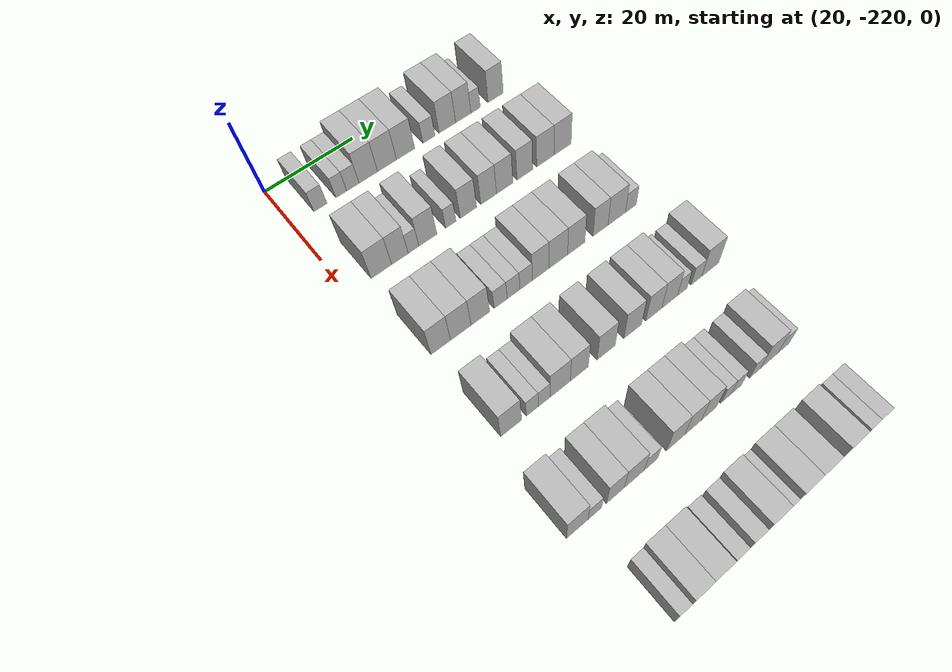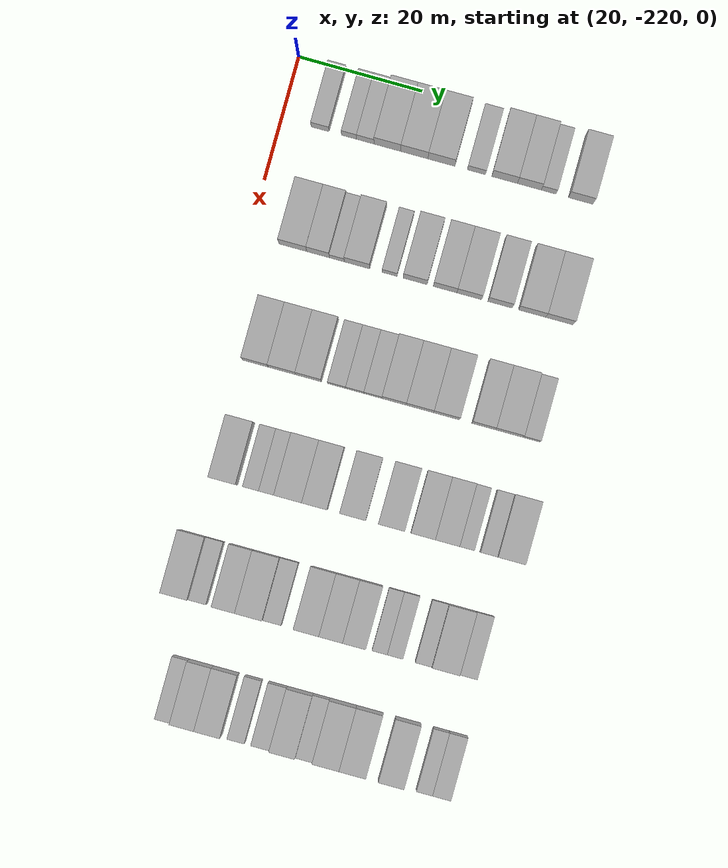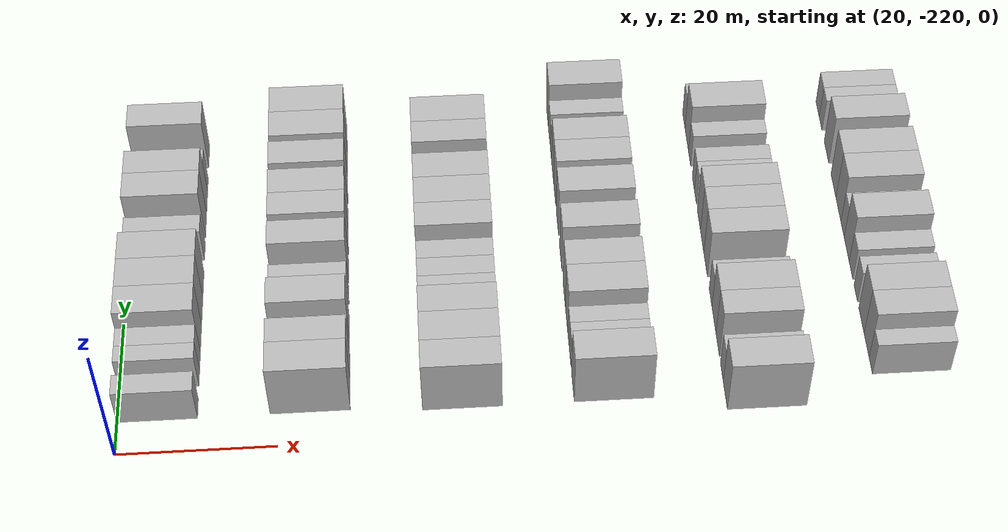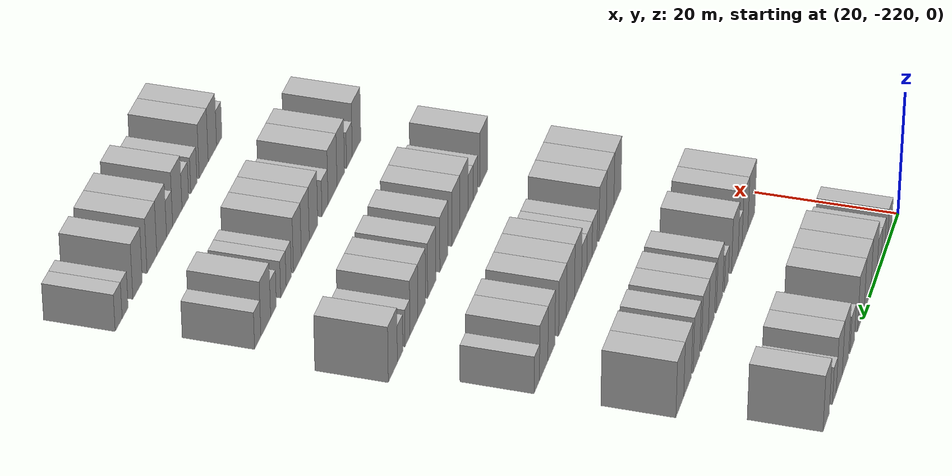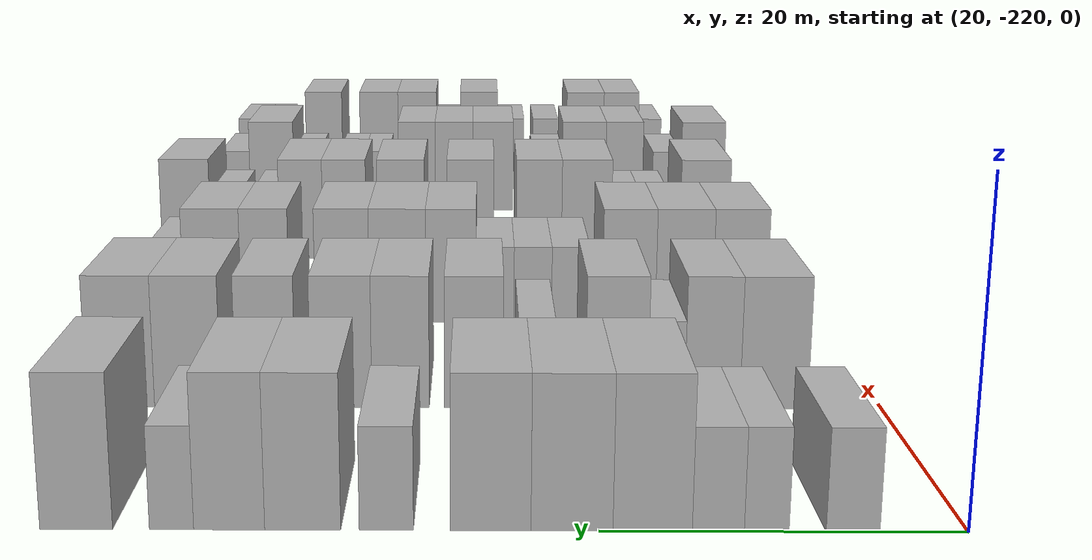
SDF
<sdf version="1.6">
 <world name="default">
  <model name="building_38">
   <static>1</static>
   <pose>25.0000 -213.7599 0 0.000000 0.000000 0.000000</pose>
   <link name="link">
    <pose>0 0 3.00 0 0 0</pose>
    <collision name="collision"><geometry><box><size>10.0000 2.9134 6.0000</size></box></geometry></collision>
    <visual name="visual">
     <cast_shadows>0</cast_shadows>
     <geometry><box><size>10.0000 2.9134 6.0000</size></box></geometry>
     <material>
      <script>
       <uri>model://HANNAS_wall/materials/scripts</uri>
       <uri>model://HANNAS_wall/materials/textures</uri>
       <name>vrc/HANNAS_wall</name>
      </script>
     </material>
    </visual>
   </link>
  </model>
  <model name="building_39">
   <static>1</static>
   <pose>25.0000 -209.0896 0 0.000000 0.000000 0.000000</pose>
   <link name="link">
    <pose>0 0 3.00 0 0 0</pose>
    <collision name="collision"><geometry><box><size>10.0000 2.4271 6.0000</size></box></geometry></collision>
    <visual name="visual">
     <cast_shadows>0</cast_shadows>
     <geometry><box><size>10.0000 2.4271 6.0000</size></box></geometry>
     <material>
      <script>
       <uri>model://HANNAS_wall/materials/scripts</uri>
       <uri>model://HANNAS_wall/materials/textures</uri>
       <name>vrc/HANNAS_wall</name>
      </script>
     </material>
    </visual>
   </link>
  </model>
  <model name="building_40">
   <static>1</static>
   <pose>25.0000 -206.4673 0 0.000000 0.000000 0.000000</pose>
   <link name="link">
    <pose>0 0 3.00 0 0 0</pose>
    <collision name="collision"><geometry><box><size>10.0000 2.8175 6.0000</size></box></geometry></collision>
    <visual name="visual">
     <cast_shadows>0</cast_shadows>
     <geometry><box><size>10.0000 2.8175 6.0000</size></box></geometry>
     <material>
      <script>
       <uri>model://HANNAS_wall/materials/scripts</uri>
       <uri>model://HANNAS_wall/materials/textures</uri>
       <name>vrc/HANNAS_wall</name>
      </script>
     </material>
    </visual>
   </link>
  </model>
  <model name="building_41">
   <static>1</static>
   <pose>25.0000 -202.9107 0 0.000000 0.000000 0.000000</pose>
   <link name="link">
    <pose>0 0 4.50 0 0 0</pose>
    <collision name="collision"><geometry><box><size>10.0000 4.2958 9.0000</size></box></geometry></collision>
    <visual name="visual">
     <cast_shadows>0</cast_shadows>
     <geometry><box><size>10.0000 4.2958 9.0000</size></box></geometry>
     <material>
      <script>
       <uri>model://HANNAS_wall/materials/scripts</uri>
       <uri>model://HANNAS_wall/materials/textures</uri>
       <name>vrc/HANNAS_wall</name>
      </script>
     </material>
    </visual>
   </link>
  </model>
  <model name="building_42">
   <static>1</static>
   <pose>25.0000 -198.5408 0 0.000000 0.000000 0.000000</pose>
   <link name="link">
    <pose>0 0 4.50 0 0 0</pose>
    <collision name="collision"><geometry><box><size>10.0000 4.4440 9.0000</size></box></geometry></collision>
    <visual name="visual">
     <cast_shadows>0</cast_shadows>
     <geometry><box><size>10.0000 4.4440 9.0000</size></box></geometry>
     <material>
      <script>
       <uri>model://HANNAS_wall/materials/scripts</uri>
       <uri>model://HANNAS_wall/materials/textures</uri>
       <name>vrc/HANNAS_wall</name>
      </script>
     </material>
    </visual>
   </link>
  </model>
  <model name="building_43">
   <static>1</static>
   <pose>25.0000 -194.1332 0 0.000000 0.000000 0.000000</pose>
   <link name="link">
    <pose>0 0 4.50 0 0 0</pose>
    <collision name="collision"><geometry><box><size>10.0000 4.3711 9.0000</size></box></geometry></collision>
    <visual name="visual">
     <cast_shadows>0</cast_shadows>
     <geometry><box><size>10.0000 4.3711 9.0000</size></box></geometry>
     <material>
      <script>
       <uri>model://HANNAS_wall/materials/scripts</uri>
       <uri>model://HANNAS_wall/materials/textures</uri>
       <name>vrc/HANNAS_wall</name>
      </script>
     </material>
    </visual>
   </link>
  </model>
  <model name="building_44">
   <static>1</static>
   <pose>25.0000 -188.4746 0 0.000000 0.000000 0.000000</pose>
   <link name="link">
    <pose>0 0 3.00 0 0 0</pose>
    <collision name="collision"><geometry><box><size>10.0000 2.9461 6.0000</size></box></geometry></collision>
    <visual name="visual">
     <cast_shadows>0</cast_shadows>
     <geometry><box><size>10.0000 2.9461 6.0000</size></box></geometry>
     <material>
      <script>
       <uri>model://HANNAS_wall/materials/scripts</uri>
       <uri>model://HANNAS_wall/materials/textures</uri>
       <name>vrc/HANNAS_wall</name>
      </script>
     </material>
    </visual>
   </link>
  </model>
  <model name="building_45">
   <static>1</static>
   <pose>25.0000 -183.9354 0 0.000000 0.000000 0.000000</pose>
   <link name="link">
    <pose>0 0 4.50 0 0 0</pose>
    <collision name="collision"><geometry><box><size>10.0000 4.1322 9.0000</size></box></geometry></collision>
    <visual name="visual">
     <cast_shadows>0</cast_shadows>
     <geometry><box><size>10.0000 4.1322 9.0000</size></box></geometry>
     <material>
      <script>
       <uri>model://HANNAS_wall/materials/scripts</uri>
       <uri>model://HANNAS_wall/materials/textures</uri>
       <name>vrc/HANNAS_wall</name>
      </script>
     </material>
    </visual>
   </link>
  </model>
  <model name="building_46">
   <static>1</static>
   <pose>25.0000 -179.9384 0 0.000000 0.000000 0.000000</pose>
   <link name="link">
    <pose>0 0 4.50 0 0 0</pose>
    <collision name="collision"><geometry><box><size>10.0000 3.8619 9.0000</size></box></geometry></collision>
    <visual name="visual">
     <cast_shadows>0</cast_shadows>
     <geometry><box><size>10.0000 3.8619 9.0000</size></box></geometry>
     <material>
      <script>
       <uri>model://HANNAS_wall/materials/scripts</uri>
       <uri>model://HANNAS_wall/materials/textures</uri>
       <name>vrc/HANNAS_wall</name>
      </script>
     </material>
    </visual>
   </link>
  </model>
  <model name="building_47">
   <static>1</static>
   <pose>25.0000 -176.8023 0 0.000000 0.000000 0.000000</pose>
   <link name="link">
    <pose>0 0 3.00 0 0 0</pose>
    <collision name="collision"><geometry><box><size>10.0000 2.4102 6.0000</size></box></geometry></collision>
    <visual name="visual">
     <cast_shadows>0</cast_shadows>
     <geometry><box><size>10.0000 2.4102 6.0000</size></box></geometry>
     <material>
      <script>
       <uri>model://HANNAS_wall/materials/scripts</uri>
       <uri>model://HANNAS_wall/materials/textures</uri>
       <name>vrc/HANNAS_wall</name>
      </script>
     </material>
    </visual>
   </link>
  </model>
  <model name="building_48">
   <static>1</static>
   <pose>25.0000 -171.6139 0 0.000000 0.000000 0.000000</pose>
   <link name="link">
    <pose>0 0 4.50 0 0 0</pose>
    <collision name="collision"><geometry><box><size>10.0000 3.9666 9.0000</size></box></geometry></collision>
    <visual name="visual">
     <cast_shadows>0</cast_shadows>
     <geometry><box><size>10.0000 3.9666 9.0000</size></box></geometry>
     <material>
      <script>
       <uri>model://HANNAS_wall/materials/scripts</uri>
       <uri>model://HANNAS_wall/materials/textures</uri>
       <name>vrc/HANNAS_wall</name>
      </script>
     </material>
    </visual>
   </link>
  </model>
  <model name="building_213">
   <static>1</static>
   <pose>44.0000 -212.8921 0 0.000000 0.000000 0.000000</pose>
   <link name="link">
    <pose>0 0 4.50 0 0 0</pose>
    <collision name="collision"><geometry><box><size>10.0000 4.4757 9.0000</size></box></geometry></collision>
    <visual name="visual">
     <cast_shadows>0</cast_shadows>
     <geometry><box><size>10.0000 4.4757 9.0000</size></box></geometry>
     <material>
      <script>
       <uri>model://HANNAS_wall/materials/scripts</uri>
       <uri>model://HANNAS_wall/materials/textures</uri>
       <name>vrc/HANNAS_wall</name>
      </script>
     </material>
    </visual>
   </link>
  </model>
  <model name="building_214">
   <static>1</static>
   <pose>44.0000 -208.8292 0 0.000000 0.000000 0.000000</pose>
   <link name="link">
    <pose>0 0 4.50 0 0 0</pose>
    <collision name="collision"><geometry><box><size>10.0000 3.6500 9.0000</size></box></geometry></collision>
    <visual name="visual">
     <cast_shadows>0</cast_shadows>
     <geometry><box><size>10.0000 3.6500 9.0000</size></box></geometry>
     <material>
      <script>
       <uri>model://HANNAS_wall/materials/scripts</uri>
       <uri>model://HANNAS_wall/materials/textures</uri>
       <name>vrc/HANNAS_wall</name>
      </script>
     </material>
    </visual>
   </link>
  </model>
  <model name="building_215">
   <static>1</static>
   <pose>44.0000 -205.7960 0 0.000000 0.000000 0.000000</pose>
   <link name="link">
    <pose>0 0 3.00 0 0 0</pose>
    <collision name="collision"><geometry><box><size>10.0000 2.4164 6.0000</size></box></geometry></collision>
    <visual name="visual">
     <cast_shadows>0</cast_shadows>
     <geometry><box><size>10.0000 2.4164 6.0000</size></box></geometry>
     <material>
      <script>
       <uri>model://HANNAS_wall/materials/scripts</uri>
       <uri>model://HANNAS_wall/materials/textures</uri>
       <name>vrc/HANNAS_wall</name>
      </script>
     </material>
    </visual>
   </link>
  </model>
  <model name="building_216">
   <static>1</static>
   <pose>44.0000 -202.5442 0 0.000000 0.000000 0.000000</pose>
   <link name="link">
    <pose>0 0 4.50 0 0 0</pose>
    <collision name="collision"><geometry><box><size>10.0000 4.0873 9.0000</size></box></geometry></collision>
    <visual name="visual">
     <cast_shadows>0</cast_shadows>
     <geometry><box><size>10.0000 4.0873 9.0000</size></box></geometry>
     <material>
      <script>
       <uri>model://HANNAS_wall/materials/scripts</uri>
       <uri>model://HANNAS_wall/materials/textures</uri>
       <name>vrc/HANNAS_wall</name>
      </script>
     </material>
    </visual>
   </link>
  </model>
  <model name="building_217">
   <static>1</static>
   <pose>44.0000 -197.2894 0 0.000000 0.000000 0.000000</pose>
   <link name="link">
    <pose>0 0 3.00 0 0 0</pose>
    <collision name="collision"><geometry><box><size>10.0000 2.4222 6.0000</size></box></geometry></collision>
    <visual name="visual">
     <cast_shadows>0</cast_shadows>
     <geometry><box><size>10.0000 2.4222 6.0000</size></box></geometry>
     <material>
      <script>
       <uri>model://HANNAS_wall/materials/scripts</uri>
       <uri>model://HANNAS_wall/materials/textures</uri>
       <name>vrc/HANNAS_wall</name>
      </script>
     </material>
    </visual>
   </link>
  </model>
  <model name="building_218">
   <static>1</static>
   <pose>44.0000 -193.1471 0 0.000000 0.000000 0.000000</pose>
   <link name="link">
    <pose>0 0 4.50 0 0 0</pose>
    <collision name="collision"><geometry><box><size>10.0000 3.8624 9.0000</size></box></geometry></collision>
    <visual name="visual">
     <cast_shadows>0</cast_shadows>
     <geometry><box><size>10.0000 3.8624 9.0000</size></box></geometry>
     <material>
      <script>
       <uri>model://HANNAS_wall/materials/scripts</uri>
       <uri>model://HANNAS_wall/materials/textures</uri>
       <name>vrc/HANNAS_wall</name>
      </script>
     </material>
    </visual>
   </link>
  </model>
  <model name="building_219">
   <static>1</static>
   <pose>44.0000 -188.3193 0 0.000000 0.000000 0.000000</pose>
   <link name="link">
    <pose>0 0 4.50 0 0 0</pose>
    <collision name="collision"><geometry><box><size>10.0000 3.7932 9.0000</size></box></geometry></collision>
    <visual name="visual">
     <cast_shadows>0</cast_shadows>
     <geometry><box><size>10.0000 3.7932 9.0000</size></box></geometry>
     <material>
      <script>
       <uri>model://HANNAS_wall/materials/scripts</uri>
       <uri>model://HANNAS_wall/materials/textures</uri>
       <name>vrc/HANNAS_wall</name>
      </script>
     </material>
    </visual>
   </link>
  </model>
  <model name="building_220">
   <static>1</static>
   <pose>44.0000 -184.4134 0 0.000000 0.000000 0.000000</pose>
   <link name="link">
    <pose>0 0 4.50 0 0 0</pose>
    <collision name="collision"><geometry><box><size>10.0000 4.0186 9.0000</size></box></geometry></collision>
    <visual name="visual">
     <cast_shadows>0</cast_shadows>
     <geometry><box><size>10.0000 4.0186 9.0000</size></box></geometry>
     <material>
      <script>
       <uri>model://HANNAS_wall/materials/scripts</uri>
       <uri>model://HANNAS_wall/materials/textures</uri>
       <name>vrc/HANNAS_wall</name>
      </script>
     </material>
    </visual>
   </link>
  </model>
  <model name="building_221">
   <static>1</static>
   <pose>44.0000 -179.4367 0 0.000000 0.000000 0.000000</pose>
   <link name="link">
    <pose>0 0 4.50 0 0 0</pose>
    <collision name="collision"><geometry><box><size>10.0000 3.9348 9.0000</size></box></geometry></collision>
    <visual name="visual">
     <cast_shadows>0</cast_shadows>
     <geometry><box><size>10.0000 3.9348 9.0000</size></box></geometry>
     <material>
      <script>
       <uri>model://HANNAS_wall/materials/scripts</uri>
       <uri>model://HANNAS_wall/materials/textures</uri>
       <name>vrc/HANNAS_wall</name>
      </script>
     </material>
    </visual>
   </link>
  </model>
  <model name="building_222">
   <static>1</static>
   <pose>44.0000 -174.2751 0 0.000000 0.000000 0.000000</pose>
   <link name="link">
    <pose>0 0 4.50 0 0 0</pose>
    <collision name="collision"><geometry><box><size>10.0000 4.3882 9.0000</size></box></geometry></collision>
    <visual name="visual">
     <cast_shadows>0</cast_shadows>
     <geometry><box><size>10.0000 4.3882 9.0000</size></box></geometry>
     <material>
      <script>
       <uri>model://HANNAS_wall/materials/scripts</uri>
       <uri>model://HANNAS_wall/materials/textures</uri>
       <name>vrc/HANNAS_wall</name>
      </script>
     </material>
    </visual>
   </link>
  </model>
  <model name="building_223">
   <static>1</static>
   <pose>44.0000 -169.8479 0 0.000000 0.000000 0.000000</pose>
   <link name="link">
    <pose>0 0 4.50 0 0 0</pose>
    <collision name="collision"><geometry><box><size>10.0000 4.4661 9.0000</size></box></geometry></collision>
    <visual name="visual">
     <cast_shadows>0</cast_shadows>
     <geometry><box><size>10.0000 4.4661 9.0000</size></box></geometry>
     <material>
      <script>
       <uri>model://HANNAS_wall/materials/scripts</uri>
       <uri>model://HANNAS_wall/materials/textures</uri>
       <name>vrc/HANNAS_wall</name>
      </script>
     </material>
    </visual>
   </link>
  </model>
  <model name="building_389">
   <static>1</static>
   <pose>63.0000 -213.6389 0 0.000000 0.000000 0.000000</pose>
   <link name="link">
    <pose>0 0 4.50 0 0 0</pose>
    <collision name="collision"><geometry><box><size>10.0000 4.1903 9.0000</size></box></geometry></collision>
    <visual name="visual">
     <cast_shadows>0</cast_shadows>
     <geometry><box><size>10.0000 4.1903 9.0000</size></box></geometry>
     <material>
      <script>
       <uri>model://HANNAS_wall/materials/scripts</uri>
       <uri>model://HANNAS_wall/materials/textures</uri>
       <name>vrc/HANNAS_wall</name>
      </script>
     </material>
    </visual>
   </link>
  </model>
  <model name="building_390">
   <static>1</static>
   <pose>63.0000 -209.3340 0 0.000000 0.000000 0.000000</pose>
   <link name="link">
    <pose>0 0 4.50 0 0 0</pose>
    <collision name="collision"><geometry><box><size>10.0000 4.4195 9.0000</size></box></geometry></collision>
    <visual name="visual">
     <cast_shadows>0</cast_shadows>
     <geometry><box><size>10.0000 4.4195 9.0000</size></box></geometry>
     <material>
      <script>
       <uri>model://HANNAS_wall/materials/scripts</uri>
       <uri>model://HANNAS_wall/materials/textures</uri>
       <name>vrc/HANNAS_wall</name>
      </script>
     </material>
    </visual>
   </link>
  </model>
  <model name="building_391">
   <static>1</static>
   <pose>63.0000 -205.0713 0 0.000000 0.000000 0.000000</pose>
   <link name="link">
    <pose>0 0 4.50 0 0 0</pose>
    <collision name="collision"><geometry><box><size>10.0000 4.1059 9.0000</size></box></geometry></collision>
    <visual name="visual">
     <cast_shadows>0</cast_shadows>
     <geometry><box><size>10.0000 4.1059 9.0000</size></box></geometry>
     <material>
      <script>
       <uri>model://HANNAS_wall/materials/scripts</uri>
       <uri>model://HANNAS_wall/materials/textures</uri>
       <name>vrc/HANNAS_wall</name>
      </script>
     </material>
    </visual>
   </link>
  </model>
  <model name="building_392">
   <static>1</static>
   <pose>63.0000 -200.5547 0 0.000000 0.000000 0.000000</pose>
   <link name="link">
    <pose>0 0 3.00 0 0 0</pose>
    <collision name="collision"><geometry><box><size>10.0000 2.9273 6.0000</size></box></geometry></collision>
    <visual name="visual">
     <cast_shadows>0</cast_shadows>
     <geometry><box><size>10.0000 2.9273 6.0000</size></box></geometry>
     <material>
      <script>
       <uri>model://HANNAS_wall/materials/scripts</uri>
       <uri>model://HANNAS_wall/materials/textures</uri>
       <name>vrc/HANNAS_wall</name>
      </script>
     </material>
    </visual>
   </link>
  </model>
  <model name="building_393">
   <static>1</static>
   <pose>63.0000 -197.6347 0 0.000000 0.000000 0.000000</pose>
   <link name="link">
    <pose>0 0 3.00 0 0 0</pose>
    <collision name="collision"><geometry><box><size>10.0000 2.9127 6.0000</size></box></geometry></collision>
    <visual name="visual">
     <cast_shadows>0</cast_shadows>
     <geometry><box><size>10.0000 2.9127 6.0000</size></box></geometry>
     <material>
      <script>
       <uri>model://HANNAS_wall/materials/scripts</uri>
       <uri>model://HANNAS_wall/materials/textures</uri>
       <name>vrc/HANNAS_wall</name>
      </script>
     </material>
    </visual>
   </link>
  </model>
  <model name="building_394">
   <static>1</static>
   <pose>63.0000 -194.7197 0 0.000000 0.000000 0.000000</pose>
   <link name="link">
    <pose>0 0 3.00 0 0 0</pose>
    <collision name="collision"><geometry><box><size>10.0000 2.9173 6.0000</size></box></geometry></collision>
    <visual name="visual">
     <cast_shadows>0</cast_shadows>
     <geometry><box><size>10.0000 2.9173 6.0000</size></box></geometry>
     <material>
      <script>
       <uri>model://HANNAS_wall/materials/scripts</uri>
       <uri>model://HANNAS_wall/materials/textures</uri>
       <name>vrc/HANNAS_wall</name>
      </script>
     </material>
    </visual>
   </link>
  </model>
  <model name="building_395">
   <static>1</static>
   <pose>63.0000 -191.3083 0 0.000000 0.000000 0.000000</pose>
   <link name="link">
    <pose>0 0 4.50 0 0 0</pose>
    <collision name="collision"><geometry><box><size>10.0000 3.9055 9.0000</size></box></geometry></collision>
    <visual name="visual">
     <cast_shadows>0</cast_shadows>
     <geometry><box><size>10.0000 3.9055 9.0000</size></box></geometry>
     <material>
      <script>
       <uri>model://HANNAS_wall/materials/scripts</uri>
       <uri>model://HANNAS_wall/materials/textures</uri>
       <name>vrc/HANNAS_wall</name>
      </script>
     </material>
    </visual>
   </link>
  </model>
  <model name="building_396">
   <static>1</static>
   <pose>63.0000 -187.1611 0 0.000000 0.000000 0.000000</pose>
   <link name="link">
    <pose>0 0 4.50 0 0 0</pose>
    <collision name="collision"><geometry><box><size>10.0000 4.3890 9.0000</size></box></geometry></collision>
    <visual name="visual">
     <cast_shadows>0</cast_shadows>
     <geometry><box><size>10.0000 4.3890 9.0000</size></box></geometry>
     <material>
      <script>
       <uri>model://HANNAS_wall/materials/scripts</uri>
       <uri>model://HANNAS_wall/materials/textures</uri>
       <name>vrc/HANNAS_wall</name>
      </script>
     </material>
    </visual>
   </link>
  </model>
  <model name="building_397">
   <static>1</static>
   <pose>63.0000 -182.8721 0 0.000000 0.000000 0.000000</pose>
   <link name="link">
    <pose>0 0 4.50 0 0 0</pose>
    <collision name="collision"><geometry><box><size>10.0000 4.1889 9.0000</size></box></geometry></collision>
    <visual name="visual">
     <cast_shadows>0</cast_shadows>
     <geometry><box><size>10.0000 4.1889 9.0000</size></box></geometry>
     <material>
      <script>
       <uri>model://HANNAS_wall/materials/scripts</uri>
       <uri>model://HANNAS_wall/materials/textures</uri>
       <name>vrc/HANNAS_wall</name>
      </script>
     </material>
    </visual>
   </link>
  </model>
  <model name="building_398">
   <static>1</static>
   <pose>63.0000 -176.9115 0 0.000000 0.000000 0.000000</pose>
   <link name="link">
    <pose>0 0 4.50 0 0 0</pose>
    <collision name="collision"><geometry><box><size>10.0000 3.7324 9.0000</size></box></geometry></collision>
    <visual name="visual">
     <cast_shadows>0</cast_shadows>
     <geometry><box><size>10.0000 3.7324 9.0000</size></box></geometry>
     <material>
      <script>
       <uri>model://HANNAS_wall/materials/scripts</uri>
       <uri>model://HANNAS_wall/materials/textures</uri>
       <name>vrc/HANNAS_wall</name>
      </script>
     </material>
    </visual>
   </link>
  </model>
  <model name="building_399">
   <static>1</static>
   <pose>63.0000 -172.8162 0 0.000000 0.000000 0.000000</pose>
   <link name="link">
    <pose>0 0 4.50 0 0 0</pose>
    <collision name="collision"><geometry><box><size>10.0000 4.4581 9.0000</size></box></geometry></collision>
    <visual name="visual">
     <cast_shadows>0</cast_shadows>
     <geometry><box><size>10.0000 4.4581 9.0000</size></box></geometry>
     <material>
      <script>
       <uri>model://HANNAS_wall/materials/scripts</uri>
       <uri>model://HANNAS_wall/materials/textures</uri>
       <name>vrc/HANNAS_wall</name>
      </script>
     </material>
    </visual>
   </link>
  </model>
  <model name="building_400">
   <static>1</static>
   <pose>63.0000 -169.1972 0 0.000000 0.000000 0.000000</pose>
   <link name="link">
    <pose>0 0 3.00 0 0 0</pose>
    <collision name="collision"><geometry><box><size>10.0000 2.7799 6.0000</size></box></geometry></collision>
    <visual name="visual">
     <cast_shadows>0</cast_shadows>
     <geometry><box><size>10.0000 2.7799 6.0000</size></box></geometry>
     <material>
      <script>
       <uri>model://HANNAS_wall/materials/scripts</uri>
       <uri>model://HANNAS_wall/materials/textures</uri>
       <name>vrc/HANNAS_wall</name>
      </script>
     </material>
    </visual>
   </link>
  </model>
  <model name="building_580">
   <static>1</static>
   <pose>82.0000 -213.4880 0 0.000000 0.000000 0.000000</pose>
   <link name="link">
    <pose>0 0 4.50 0 0 0</pose>
    <collision name="collision"><geometry><box><size>10.0000 4.3690 9.0000</size></box></geometry></collision>
    <visual name="visual">
     <cast_shadows>0</cast_shadows>
     <geometry><box><size>10.0000 4.3690 9.0000</size></box></geometry>
     <material>
      <script>
       <uri>model://HANNAS_wall/materials/scripts</uri>
       <uri>model://HANNAS_wall/materials/textures</uri>
       <name>vrc/HANNAS_wall</name>
      </script>
     </material>
    </visual>
   </link>
  </model>
  <model name="building_581">
   <static>1</static>
   <pose>82.0000 -209.0197 0 0.000000 0.000000 0.000000</pose>
   <link name="link">
    <pose>0 0 3.00 0 0 0</pose>
    <collision name="collision"><geometry><box><size>10.0000 2.5674 6.0000</size></box></geometry></collision>
    <visual name="visual">
     <cast_shadows>0</cast_shadows>
     <geometry><box><size>10.0000 2.5674 6.0000</size></box></geometry>
     <material>
      <script>
       <uri>model://HANNAS_wall/materials/scripts</uri>
       <uri>model://HANNAS_wall/materials/textures</uri>
       <name>vrc/HANNAS_wall</name>
      </script>
     </material>
    </visual>
   </link>
  </model>
  <model name="building_582">
   <static>1</static>
   <pose>82.0000 -206.4829 0 0.000000 0.000000 0.000000</pose>
   <link name="link">
    <pose>0 0 3.00 0 0 0</pose>
    <collision name="collision"><geometry><box><size>10.0000 2.5062 6.0000</size></box></geometry></collision>
    <visual name="visual">
     <cast_shadows>0</cast_shadows>
     <geometry><box><size>10.0000 2.5062 6.0000</size></box></geometry>
     <material>
      <script>
       <uri>model://HANNAS_wall/materials/scripts</uri>
       <uri>model://HANNAS_wall/materials/textures</uri>
       <name>vrc/HANNAS_wall</name>
      </script>
     </material>
    </visual>
   </link>
  </model>
  <model name="building_583">
   <static>1</static>
   <pose>82.0000 -203.0161 0 0.000000 0.000000 0.000000</pose>
   <link name="link">
    <pose>0 0 4.50 0 0 0</pose>
    <collision name="collision"><geometry><box><size>10.0000 4.4275 9.0000</size></box></geometry></collision>
    <visual name="visual">
     <cast_shadows>0</cast_shadows>
     <geometry><box><size>10.0000 4.4275 9.0000</size></box></geometry>
     <material>
      <script>
       <uri>model://HANNAS_wall/materials/scripts</uri>
       <uri>model://HANNAS_wall/materials/textures</uri>
       <name>vrc/HANNAS_wall</name>
      </script>
     </material>
    </visual>
   </link>
  </model>
  <model name="building_584">
   <static>1</static>
   <pose>82.0000 -198.7876 0 0.000000 0.000000 0.000000</pose>
   <link name="link">
    <pose>0 0 4.50 0 0 0</pose>
    <collision name="collision"><geometry><box><size>10.0000 4.0295 9.0000</size></box></geometry></collision>
    <visual name="visual">
     <cast_shadows>0</cast_shadows>
     <geometry><box><size>10.0000 4.0295 9.0000</size></box></geometry>
     <material>
      <script>
       <uri>model://HANNAS_wall/materials/scripts</uri>
       <uri>model://HANNAS_wall/materials/textures</uri>
       <name>vrc/HANNAS_wall</name>
      </script>
     </material>
    </visual>
   </link>
  </model>
  <model name="building_585">
   <static>1</static>
   <pose>82.0000 -192.6904 0 0.000000 0.000000 0.000000</pose>
   <link name="link">
    <pose>0 0 4.50 0 0 0</pose>
    <collision name="collision"><geometry><box><size>10.0000 4.1648 9.0000</size></box></geometry></collision>
    <visual name="visual">
     <cast_shadows>0</cast_shadows>
     <geometry><box><size>10.0000 4.1648 9.0000</size></box></geometry>
     <material>
      <script>
       <uri>model://HANNAS_wall/materials/scripts</uri>
       <uri>model://HANNAS_wall/materials/textures</uri>
       <name>vrc/HANNAS_wall</name>
      </script>
     </material>
    </visual>
   </link>
  </model>
  <model name="building_586">
   <static>1</static>
   <pose>82.0000 -186.5105 0 0.000000 0.000000 0.000000</pose>
   <link name="link">
    <pose>0 0 4.50 0 0 0</pose>
    <collision name="collision"><geometry><box><size>10.0000 4.1949 9.0000</size></box></geometry></collision>
    <visual name="visual">
     <cast_shadows>0</cast_shadows>
     <geometry><box><size>10.0000 4.1949 9.0000</size></box></geometry>
     <material>
      <script>
       <uri>model://HANNAS_wall/materials/scripts</uri>
       <uri>model://HANNAS_wall/materials/textures</uri>
       <name>vrc/HANNAS_wall</name>
      </script>
     </material>
    </visual>
   </link>
  </model>
  <model name="building_587">
   <static>1</static>
   <pose>82.0000 -181.4839 0 0.000000 0.000000 0.000000</pose>
   <link name="link">
    <pose>0 0 4.50 0 0 0</pose>
    <collision name="collision"><geometry><box><size>10.0000 3.8583 9.0000</size></box></geometry></collision>
    <visual name="visual">
     <cast_shadows>0</cast_shadows>
     <geometry><box><size>10.0000 3.8583 9.0000</size></box></geometry>
     <material>
      <script>
       <uri>model://HANNAS_wall/materials/scripts</uri>
       <uri>model://HANNAS_wall/materials/textures</uri>
       <name>vrc/HANNAS_wall</name>
      </script>
     </material>
    </visual>
   </link>
  </model>
  <model name="building_588">
   <static>1</static>
   <pose>82.0000 -177.6208 0 0.000000 0.000000 0.000000</pose>
   <link name="link">
    <pose>0 0 4.50 0 0 0</pose>
    <collision name="collision"><geometry><box><size>10.0000 3.8679 9.0000</size></box></geometry></collision>
    <visual name="visual">
     <cast_shadows>0</cast_shadows>
     <geometry><box><size>10.0000 3.8679 9.0000</size></box></geometry>
     <material>
      <script>
       <uri>model://HANNAS_wall/materials/scripts</uri>
       <uri>model://HANNAS_wall/materials/textures</uri>
       <name>vrc/HANNAS_wall</name>
      </script>
     </material>
    </visual>
   </link>
  </model>
  <model name="building_589">
   <static>1</static>
   <pose>82.0000 -174.4771 0 0.000000 0.000000 0.000000</pose>
   <link name="link">
    <pose>0 0 3.00 0 0 0</pose>
    <collision name="collision"><geometry><box><size>10.0000 2.4195 6.0000</size></box></geometry></collision>
    <visual name="visual">
     <cast_shadows>0</cast_shadows>
     <geometry><box><size>10.0000 2.4195 6.0000</size></box></geometry>
     <material>
      <script>
       <uri>model://HANNAS_wall/materials/scripts</uri>
       <uri>model://HANNAS_wall/materials/textures</uri>
       <name>vrc/HANNAS_wall</name>
      </script>
     </material>
    </visual>
   </link>
  </model>
  <model name="building_590">
   <static>1</static>
   <pose>82.0000 -170.9201 0 0.000000 0.000000 0.000000</pose>
   <link name="link">
    <pose>0 0 3.00 0 0 0</pose>
    <collision name="collision"><geometry><box><size>10.0000 2.6946 6.0000</size></box></geometry></collision>
    <visual name="visual">
     <cast_shadows>0</cast_shadows>
     <geometry><box><size>10.0000 2.6946 6.0000</size></box></geometry>
     <material>
      <script>
       <uri>model://HANNAS_wall/materials/scripts</uri>
       <uri>model://HANNAS_wall/materials/textures</uri>
       <name>vrc/HANNAS_wall</name>
      </script>
     </material>
    </visual>
   </link>
  </model>
  <model name="building_591">
   <static>1</static>
   <pose>82.0000 -167.3891 0 0.000000 0.000000 0.000000</pose>
   <link name="link">
    <pose>0 0 4.50 0 0 0</pose>
    <collision name="collision"><geometry><box><size>10.0000 4.3674 9.0000</size></box></geometry></collision>
    <visual name="visual">
     <cast_shadows>0</cast_shadows>
     <geometry><box><size>10.0000 4.3674 9.0000</size></box></geometry>
     <material>
      <script>
       <uri>model://HANNAS_wall/materials/scripts</uri>
       <uri>model://HANNAS_wall/materials/textures</uri>
       <name>vrc/HANNAS_wall</name>
      </script>
     </material>
    </visual>
   </link>
  </model>
  <model name="building_761">
   <static>1</static>
   <pose>101.0000 -215.8664 0 0.000000 0.000000 0.000000</pose>
   <link name="link">
    <pose>0 0 4.50 0 0 0</pose>
    <collision name="collision"><geometry><box><size>10.0000 4.3256 9.0000</size></box></geometry></collision>
    <visual name="visual">
     <cast_shadows>0</cast_shadows>
     <geometry><box><size>10.0000 4.3256 9.0000</size></box></geometry>
     <material>
      <script>
       <uri>model://HANNAS_wall/materials/scripts</uri>
       <uri>model://HANNAS_wall/materials/textures</uri>
       <name>vrc/HANNAS_wall</name>
      </script>
     </material>
    </visual>
   </link>
  </model>
  <model name="building_762">
   <static>1</static>
   <pose>101.0000 -212.2838 0 0.000000 0.000000 0.000000</pose>
   <link name="link">
    <pose>0 0 3.00 0 0 0</pose>
    <collision name="collision"><geometry><box><size>10.0000 2.8394 6.0000</size></box></geometry></collision>
    <visual name="visual">
     <cast_shadows>0</cast_shadows>
     <geometry><box><size>10.0000 2.8394 6.0000</size></box></geometry>
     <material>
      <script>
       <uri>model://HANNAS_wall/materials/scripts</uri>
       <uri>model://HANNAS_wall/materials/textures</uri>
       <name>vrc/HANNAS_wall</name>
      </script>
     </material>
    </visual>
   </link>
  </model>
  <model name="building_763">
   <static>1</static>
   <pose>101.0000 -208.0155 0 0.000000 0.000000 0.000000</pose>
   <link name="link">
    <pose>0 0 4.50 0 0 0</pose>
    <collision name="collision"><geometry><box><size>10.0000 3.6971 9.0000</size></box></geometry></collision>
    <visual name="visual">
     <cast_shadows>0</cast_shadows>
     <geometry><box><size>10.0000 3.6971 9.0000</size></box></geometry>
     <material>
      <script>
       <uri>model://HANNAS_wall/materials/scripts</uri>
       <uri>model://HANNAS_wall/materials/textures</uri>
       <name>vrc/HANNAS_wall</name>
      </script>
     </material>
    </visual>
   </link>
  </model>
  <model name="building_764">
   <static>1</static>
   <pose>101.0000 -203.9911 0 0.000000 0.000000 0.000000</pose>
   <link name="link">
    <pose>0 0 4.50 0 0 0</pose>
    <collision name="collision"><geometry><box><size>10.0000 4.3517 9.0000</size></box></geometry></collision>
    <visual name="visual">
     <cast_shadows>0</cast_shadows>
     <geometry><box><size>10.0000 4.3517 9.0000</size></box></geometry>
     <material>
      <script>
       <uri>model://HANNAS_wall/materials/scripts</uri>
       <uri>model://HANNAS_wall/materials/textures</uri>
       <name>vrc/HANNAS_wall</name>
      </script>
     </material>
    </visual>
   </link>
  </model>
  <model name="building_765">
   <static>1</static>
   <pose>101.0000 -200.3421 0 0.000000 0.000000 0.000000</pose>
   <link name="link">
    <pose>0 0 3.00 0 0 0</pose>
    <collision name="collision"><geometry><box><size>10.0000 2.9464 6.0000</size></box></geometry></collision>
    <visual name="visual">
     <cast_shadows>0</cast_shadows>
     <geometry><box><size>10.0000 2.9464 6.0000</size></box></geometry>
     <material>
      <script>
       <uri>model://HANNAS_wall/materials/scripts</uri>
       <uri>model://HANNAS_wall/materials/textures</uri>
       <name>vrc/HANNAS_wall</name>
      </script>
     </material>
    </visual>
   </link>
  </model>
  <model name="building_766">
   <static>1</static>
   <pose>101.0000 -194.8412 0 0.000000 0.000000 0.000000</pose>
   <link name="link">
    <pose>0 0 4.50 0 0 0</pose>
    <collision name="collision"><geometry><box><size>10.0000 4.0555 9.0000</size></box></geometry></collision>
    <visual name="visual">
     <cast_shadows>0</cast_shadows>
     <geometry><box><size>10.0000 4.0555 9.0000</size></box></geometry>
     <material>
      <script>
       <uri>model://HANNAS_wall/materials/scripts</uri>
       <uri>model://HANNAS_wall/materials/textures</uri>
       <name>vrc/HANNAS_wall</name>
      </script>
     </material>
    </visual>
   </link>
  </model>
  <model name="building_767">
   <static>1</static>
   <pose>101.0000 -190.9261 0 0.000000 0.000000 0.000000</pose>
   <link name="link">
    <pose>0 0 4.50 0 0 0</pose>
    <collision name="collision"><geometry><box><size>10.0000 3.7747 9.0000</size></box></geometry></collision>
    <visual name="visual">
     <cast_shadows>0</cast_shadows>
     <geometry><box><size>10.0000 3.7747 9.0000</size></box></geometry>
     <material>
      <script>
       <uri>model://HANNAS_wall/materials/scripts</uri>
       <uri>model://HANNAS_wall/materials/textures</uri>
       <name>vrc/HANNAS_wall</name>
      </script>
     </material>
    </visual>
   </link>
  </model>
  <model name="building_768">
   <static>1</static>
   <pose>101.0000 -187.2001 0 0.000000 0.000000 0.000000</pose>
   <link name="link">
    <pose>0 0 4.50 0 0 0</pose>
    <collision name="collision"><geometry><box><size>10.0000 3.6773 9.0000</size></box></geometry></collision>
    <visual name="visual">
     <cast_shadows>0</cast_shadows>
     <geometry><box><size>10.0000 3.6773 9.0000</size></box></geometry>
     <material>
      <script>
       <uri>model://HANNAS_wall/materials/scripts</uri>
       <uri>model://HANNAS_wall/materials/textures</uri>
       <name>vrc/HANNAS_wall</name>
      </script>
     </material>
    </visual>
   </link>
  </model>
  <model name="building_769">
   <static>1</static>
   <pose>101.0000 -183.1547 0 0.000000 0.000000 0.000000</pose>
   <link name="link">
    <pose>0 0 3.00 0 0 0</pose>
    <collision name="collision"><geometry><box><size>10.0000 2.4135 6.0000</size></box></geometry></collision>
    <visual name="visual">
     <cast_shadows>0</cast_shadows>
     <geometry><box><size>10.0000 2.4135 6.0000</size></box></geometry>
     <material>
      <script>
       <uri>model://HANNAS_wall/materials/scripts</uri>
       <uri>model://HANNAS_wall/materials/textures</uri>
       <name>vrc/HANNAS_wall</name>
      </script>
     </material>
    </visual>
   </link>
  </model>
  <model name="building_770">
   <static>1</static>
   <pose>101.0000 -180.6973 0 0.000000 0.000000 0.000000</pose>
   <link name="link">
    <pose>0 0 3.00 0 0 0</pose>
    <collision name="collision"><geometry><box><size>10.0000 2.5014 6.0000</size></box></geometry></collision>
    <visual name="visual">
     <cast_shadows>0</cast_shadows>
     <geometry><box><size>10.0000 2.5014 6.0000</size></box></geometry>
     <material>
      <script>
       <uri>model://HANNAS_wall/materials/scripts</uri>
       <uri>model://HANNAS_wall/materials/textures</uri>
       <name>vrc/HANNAS_wall</name>
      </script>
     </material>
    </visual>
   </link>
  </model>
  <model name="building_771">
   <static>1</static>
   <pose>101.0000 -176.1392 0 0.000000 0.000000 0.000000</pose>
   <link name="link">
    <pose>0 0 3.00 0 0 0</pose>
    <collision name="collision"><geometry><box><size>10.0000 2.6148 6.0000</size></box></geometry></collision>
    <visual name="visual">
     <cast_shadows>0</cast_shadows>
     <geometry><box><size>10.0000 2.6148 6.0000</size></box></geometry>
     <material>
      <script>
       <uri>model://HANNAS_wall/materials/scripts</uri>
       <uri>model://HANNAS_wall/materials/textures</uri>
       <name>vrc/HANNAS_wall</name>
      </script>
     </material>
    </visual>
   </link>
  </model>
  <model name="building_772">
   <static>1</static>
   <pose>101.0000 -172.6218 0 0.000000 0.000000 0.000000</pose>
   <link name="link">
    <pose>0 0 4.50 0 0 0</pose>
    <collision name="collision"><geometry><box><size>10.0000 4.4199 9.0000</size></box></geometry></collision>
    <visual name="visual">
     <cast_shadows>0</cast_shadows>
     <geometry><box><size>10.0000 4.4199 9.0000</size></box></geometry>
     <material>
      <script>
       <uri>model://HANNAS_wall/materials/scripts</uri>
       <uri>model://HANNAS_wall/materials/textures</uri>
       <name>vrc/HANNAS_wall</name>
      </script>
     </material>
    </visual>
   </link>
  </model>
  <model name="building_773">
   <static>1</static>
   <pose>101.0000 -168.9955 0 0.000000 0.000000 0.000000</pose>
   <link name="link">
    <pose>0 0 3.00 0 0 0</pose>
    <collision name="collision"><geometry><box><size>10.0000 2.8327 6.0000</size></box></geometry></collision>
    <visual name="visual">
     <cast_shadows>0</cast_shadows>
     <geometry><box><size>10.0000 2.8327 6.0000</size></box></geometry>
     <material>
      <script>
       <uri>model://HANNAS_wall/materials/scripts</uri>
       <uri>model://HANNAS_wall/materials/textures</uri>
       <name>vrc/HANNAS_wall</name>
      </script>
     </material>
    </visual>
   </link>
  </model>
  <model name="building_926">
   <static>1</static>
   <pose>120.0000 -212.5129 0 0.000000 0.000000 0.000000</pose>
   <link name="link">
    <pose>0 0 3.00 0 0 0</pose>
    <collision name="collision"><geometry><box><size>10.0000 2.5273 6.0000</size></box></geometry></collision>
    <visual name="visual">
     <cast_shadows>0</cast_shadows>
     <geometry><box><size>10.0000 2.5273 6.0000</size></box></geometry>
     <material>
      <script>
       <uri>model://HANNAS_wall/materials/scripts</uri>
       <uri>model://HANNAS_wall/materials/textures</uri>
       <name>vrc/HANNAS_wall</name>
      </script>
     </material>
    </visual>
   </link>
  </model>
  <model name="building_927">
   <static>1</static>
   <pose>120.0000 -209.3061 0 0.000000 0.000000 0.000000</pose>
   <link name="link">
    <pose>0 0 4.50 0 0 0</pose>
    <collision name="collision"><geometry><box><size>10.0000 3.8863 9.0000</size></box></geometry></collision>
    <visual name="visual">
     <cast_shadows>0</cast_shadows>
     <geometry><box><size>10.0000 3.8863 9.0000</size></box></geometry>
     <material>
      <script>
       <uri>model://HANNAS_wall/materials/scripts</uri>
       <uri>model://HANNAS_wall/materials/textures</uri>
       <name>vrc/HANNAS_wall</name>
      </script>
     </material>
    </visual>
   </link>
  </model>
  <model name="building_928">
   <static>1</static>
   <pose>120.0000 -205.3003 0 0.000000 0.000000 0.000000</pose>
   <link name="link">
    <pose>0 0 4.50 0 0 0</pose>
    <collision name="collision"><geometry><box><size>10.0000 4.1253 9.0000</size></box></geometry></collision>
    <visual name="visual">
     <cast_shadows>0</cast_shadows>
     <geometry><box><size>10.0000 4.1253 9.0000</size></box></geometry>
     <material>
      <script>
       <uri>model://HANNAS_wall/materials/scripts</uri>
       <uri>model://HANNAS_wall/materials/textures</uri>
       <name>vrc/HANNAS_wall</name>
      </script>
     </material>
    </visual>
   </link>
  </model>
  <model name="building_929">
   <static>1</static>
   <pose>120.0000 -200.8493 0 0.000000 0.000000 0.000000</pose>
   <link name="link">
    <pose>0 0 3.00 0 0 0</pose>
    <collision name="collision"><geometry><box><size>10.0000 2.7767 6.0000</size></box></geometry></collision>
    <visual name="visual">
     <cast_shadows>0</cast_shadows>
     <geometry><box><size>10.0000 2.7767 6.0000</size></box></geometry>
     <material>
      <script>
       <uri>model://HANNAS_wall/materials/scripts</uri>
       <uri>model://HANNAS_wall/materials/textures</uri>
       <name>vrc/HANNAS_wall</name>
      </script>
     </material>
    </visual>
   </link>
  </model>
  <model name="building_930">
   <static>1</static>
   <pose>120.0000 -196.9756 0 0.000000 0.000000 0.000000</pose>
   <link name="link">
    <pose>0 0 3.00 0 0 0</pose>
    <collision name="collision"><geometry><box><size>10.0000 2.9707 6.0000</size></box></geometry></collision>
    <visual name="visual">
     <cast_shadows>0</cast_shadows>
     <geometry><box><size>10.0000 2.9707 6.0000</size></box></geometry>
     <material>
      <script>
       <uri>model://HANNAS_wall/materials/scripts</uri>
       <uri>model://HANNAS_wall/materials/textures</uri>
       <name>vrc/HANNAS_wall</name>
      </script>
     </material>
    </visual>
   </link>
  </model>
  <model name="building_931">
   <static>1</static>
   <pose>120.0000 -193.4152 0 0.000000 0.000000 0.000000</pose>
   <link name="link">
    <pose>0 0 4.50 0 0 0</pose>
    <collision name="collision"><geometry><box><size>10.0000 4.1501 9.0000</size></box></geometry></collision>
    <visual name="visual">
     <cast_shadows>0</cast_shadows>
     <geometry><box><size>10.0000 4.1501 9.0000</size></box></geometry>
     <material>
      <script>
       <uri>model://HANNAS_wall/materials/scripts</uri>
       <uri>model://HANNAS_wall/materials/textures</uri>
       <name>vrc/HANNAS_wall</name>
      </script>
     </material>
    </visual>
   </link>
  </model>
  <model name="building_932">
   <static>1</static>
   <pose>120.0000 -189.9929 0 0.000000 0.000000 0.000000</pose>
   <link name="link">
    <pose>0 0 3.00 0 0 0</pose>
    <collision name="collision"><geometry><box><size>10.0000 2.6945 6.0000</size></box></geometry></collision>
    <visual name="visual">
     <cast_shadows>0</cast_shadows>
     <geometry><box><size>10.0000 2.6945 6.0000</size></box></geometry>
     <material>
      <script>
       <uri>model://HANNAS_wall/materials/scripts</uri>
       <uri>model://HANNAS_wall/materials/textures</uri>
       <name>vrc/HANNAS_wall</name>
      </script>
     </material>
    </visual>
   </link>
  </model>
  <model name="building_933">
   <static>1</static>
   <pose>120.0000 -186.5030 0 0.000000 0.000000 0.000000</pose>
   <link name="link">
    <pose>0 0 4.50 0 0 0</pose>
    <collision name="collision"><geometry><box><size>10.0000 4.2854 9.0000</size></box></geometry></collision>
    <visual name="visual">
     <cast_shadows>0</cast_shadows>
     <geometry><box><size>10.0000 4.2854 9.0000</size></box></geometry>
     <material>
      <script>
       <uri>model://HANNAS_wall/materials/scripts</uri>
       <uri>model://HANNAS_wall/materials/textures</uri>
       <name>vrc/HANNAS_wall</name>
      </script>
     </material>
    </visual>
   </link>
  </model>
  <model name="building_934">
   <static>1</static>
   <pose>120.0000 -182.2332 0 0.000000 0.000000 0.000000</pose>
   <link name="link">
    <pose>0 0 4.50 0 0 0</pose>
    <collision name="collision"><geometry><box><size>10.0000 4.2541 9.0000</size></box></geometry></collision>
    <visual name="visual">
     <cast_shadows>0</cast_shadows>
     <geometry><box><size>10.0000 4.2541 9.0000</size></box></geometry>
     <material>
      <script>
       <uri>model://HANNAS_wall/materials/scripts</uri>
       <uri>model://HANNAS_wall/materials/textures</uri>
       <name>vrc/HANNAS_wall</name>
      </script>
     </material>
    </visual>
   </link>
  </model>
  <model name="building_935">
   <static>1</static>
   <pose>120.0000 -176.0727 0 0.000000 0.000000 0.000000</pose>
   <link name="link">
    <pose>0 0 4.50 0 0 0</pose>
    <collision name="collision"><geometry><box><size>10.0000 4.0669 9.0000</size></box></geometry></collision>
    <visual name="visual">
     <cast_shadows>0</cast_shadows>
     <geometry><box><size>10.0000 4.0669 9.0000</size></box></geometry>
     <material>
      <script>
       <uri>model://HANNAS_wall/materials/scripts</uri>
       <uri>model://HANNAS_wall/materials/textures</uri>
       <name>vrc/HANNAS_wall</name>
      </script>
     </material>
    </visual>
   </link>
  </model>
  <model name="building_936">
   <static>1</static>
   <pose>120.0000 -170.7646 0 0.000000 0.000000 0.000000</pose>
   <link name="link">
    <pose>0 0 3.00 0 0 0</pose>
    <collision name="collision"><geometry><box><size>10.0000 2.5491 6.0000</size></box></geometry></collision>
    <visual name="visual">
     <cast_shadows>0</cast_shadows>
     <geometry><box><size>10.0000 2.5491 6.0000</size></box></geometry>
     <material>
      <script>
       <uri>model://HANNAS_wall/materials/scripts</uri>
       <uri>model://HANNAS_wall/materials/textures</uri>
       <name>vrc/HANNAS_wall</name>
      </script>
     </material>
    </visual>
   </link>
  </model>
  <model name="building_937">
   <static>1</static>
   <pose>120.0000 -168.0247 0 0.000000 0.000000 0.000000</pose>
   <link name="link">
    <pose>0 0 3.00 0 0 0</pose>
    <collision name="collision"><geometry><box><size>10.0000 2.9308 6.0000</size></box></geometry></collision>
    <visual name="visual">
     <cast_shadows>0</cast_shadows>
     <geometry><box><size>10.0000 2.9308 6.0000</size></box></geometry>
     <material>
      <script>
       <uri>model://HANNAS_wall/materials/scripts</uri>
       <uri>model://HANNAS_wall/materials/textures</uri>
       <name>vrc/HANNAS_wall</name>
      </script>
     </material>
    </visual>
   </link>
  </model>
 </world>
</sdf>
